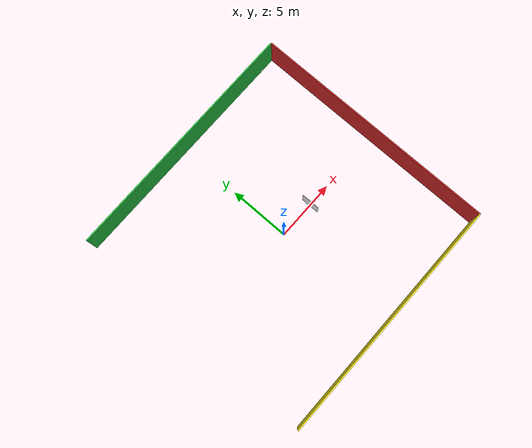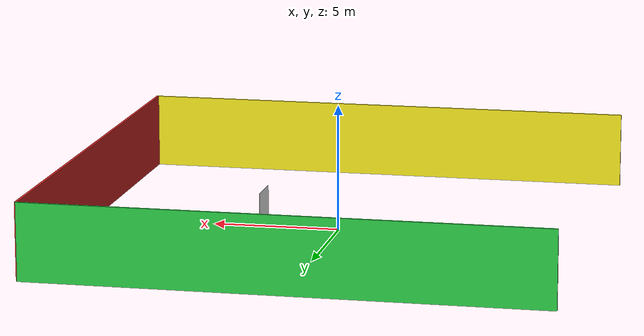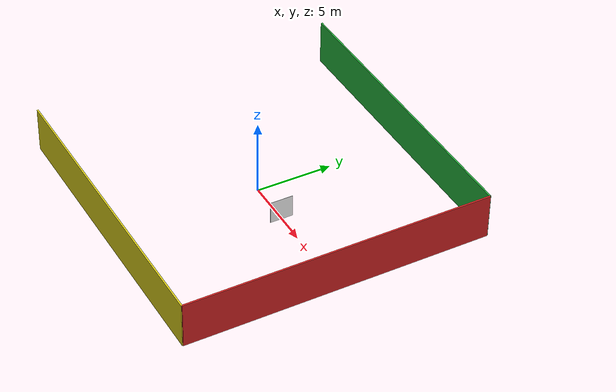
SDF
<sdf version="1.9">
 <world name="indoor_room">
  <model name="ground_plane">
   <static>true</static>
   <link name="link">
    <collision name="collision">
     <geometry><plane><normal>0 0 1</normal><size>20 20</size></plane></geometry>
    </collision>
   </link>
  </model>
  <model name="wall_north">
   <static>true</static>
   <pose>10 0 1.5 0 0 0</pose>
   <link name="link">
    <collision name="c"><geometry><box><size>0.1 20 3</size></box></geometry></collision>
    <visual name="v">
     <geometry><box><size>0.1 20 3</size></box></geometry>
     <material><diffuse>0.85 0.15 0.15 1</diffuse><ambient>0.85 0.15 0.15 1</ambient></material>
    </visual>
   </link>
  </model>
  <model name="wall_east">
   <static>true</static>
   <pose>0 10 1.5 0 0 0</pose>
   <link name="link">
    <collision name="c"><geometry><box><size>20 0.1 3</size></box></geometry></collision>
    <visual name="v">
     <geometry><box><size>20 0.1 3</size></box></geometry>
     <material><diffuse>0.15 0.75 0.25 1</diffuse><ambient>0.15 0.75 0.25 1</ambient></material>
    </visual>
   </link>
  </model>
  <model name="wall_west">
   <static>true</static>
   <pose>0 -10 1.5 0 0 0</pose>
   <link name="link">
    <collision name="c"><geometry><box><size>20 0.1 3</size></box></geometry></collision>
    <visual name="v">
     <geometry><box><size>20 0.1 3</size></box></geometry>
     <material><diffuse>0.9 0.85 0.1 1</diffuse><ambient>0.9 0.85 0.1 1</ambient></material>
    </visual>
   </link>
  </model>
  <include><uri>model://pigeon_billboard</uri><name>pigeon_1</name><pose>3 0 0.75 0 0 0</pose></include>
 </world>
</sdf>
